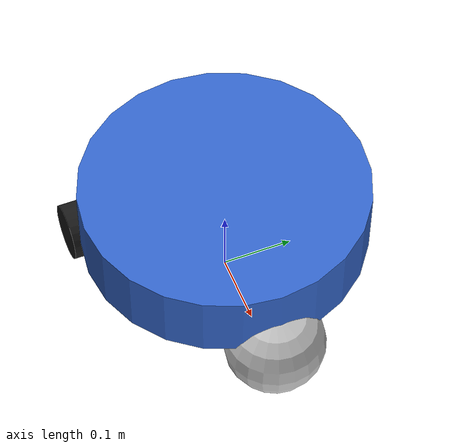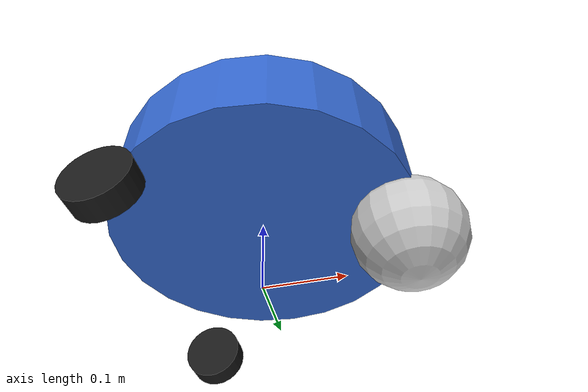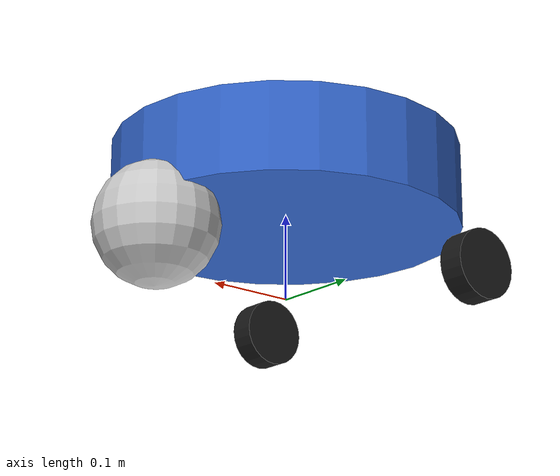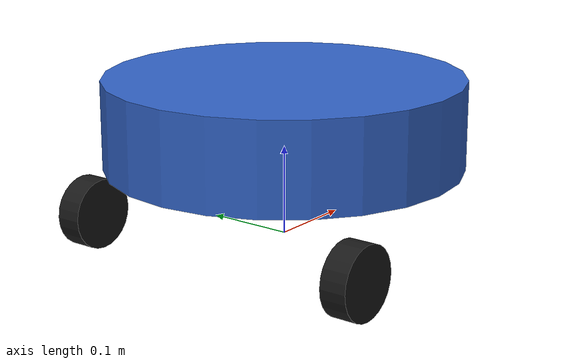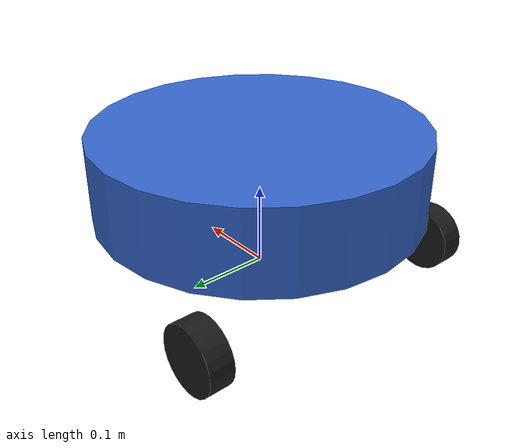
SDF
<?xml version="1.0" ?>
<sdf version="1.9">
  <model name="simple_robot">
    <pose>0 0 0.05 0 0 0</pose>

    <!-- ─── Chassis ────────────────────────────────── -->
    <link name="chassis">
      <pose>0 0 0.08 0 0 0</pose>
      <inertial>
        <mass>2.0</mass>
        <inertia>
          <ixx>0.01</ixx>
          <ixy>0</ixy>
          <ixz>0</ixz>
          <iyy>0.01</iyy>
          <iyz>0</iyz>
          <izz>0.02</izz>
        </inertia>
      </inertial>
      <collision name="collision">
        <geometry>
          <cylinder>
            <radius>0.20</radius>
            <length>0.10</length>
          </cylinder>
        </geometry>
      </collision>
      <visual name="visual">
        <geometry>
          <cylinder>
            <radius>0.20</radius>
            <length>0.10</length>
          </cylinder>
        </geometry>
        <material>
          <ambient>0.2 0.4 0.8 1</ambient>
          <diffuse>0.2 0.4 0.8 1</diffuse>
        </material>
      </visual>
      <sensor name="lidar" type="gpu_lidar">
        <pose>0 0 0.04 0 0 0</pose>
        <always_on>1</always_on>
        <update_rate>1</update_rate>
        <visualize>false</visualize>
        <topic>/scan</topic>
        <gz_frame_id>laser</gz_frame_id>
        <lidar>
          <scan>
            <horizontal>
              <samples>720</samples>
              <resolution>1</resolution>
              <min_angle>-3.14159</min_angle>
              <max_angle>3.14159</max_angle>
            </horizontal>
          </scan>
          <range>
            <min>0.1</min>
            <max>30.0</max>
            <resolution>0.01</resolution>
          </range>
          <noise>
            <type>none</type>
          </noise>
        </lidar>
      </sensor>
    </link>

    <!-- ─── Left wheel ─────────────────────────────── -->
    <link name="left_wheel">
      <pose>-0.12 0.18 -0.03 1.5708 0 0</pose>
      <inertial>
        <mass>0.2</mass>
        <inertia>
          <ixx>0.0002</ixx>
          <ixy>0</ixy>
          <ixz>0</ixz>
          <iyy>0.0002</iyy>
          <iyz>0</iyz>
          <izz>0.0003</izz>
        </inertia>
      </inertial>
      <collision name="collision">
        <geometry>
          <cylinder>
            <radius>0.04</radius>
            <length>0.03</length>
          </cylinder>
        </geometry>
      </collision>
      <visual name="visual">
        <geometry>
          <cylinder>
            <radius>0.04</radius>
            <length>0.03</length>
          </cylinder>
        </geometry>
        <material>
          <ambient>0.1 0.1 0.1 1</ambient>
          <diffuse>0.1 0.1 0.1 1</diffuse>
        </material>
      </visual>
    </link>

    <!-- ─── Right wheel ────────────────────────────── -->
    <link name="right_wheel">
      <pose>-0.12 -0.18 -0.03 1.5708 0 0</pose>
      <inertial>
        <mass>0.2</mass>
        <inertia>
          <ixx>0.0002</ixx>
          <ixy>0</ixy>
          <ixz>0</ixz>
          <iyy>0.0002</iyy>
          <iyz>0</iyz>
          <izz>0.0003</izz>
        </inertia>
      </inertial>
      <collision name="collision">
        <geometry>
          <cylinder>
            <radius>0.04</radius>
            <length>0.03</length>
          </cylinder>
        </geometry>
      </collision>
      <visual name="visual">
        <geometry>
          <cylinder>
            <radius>0.04</radius>
            <length>0.03</length>
          </cylinder>
        </geometry>
        <material>
          <ambient>0.1 0.1 0.1 1</ambient>
          <diffuse>0.1 0.1 0.1 1</diffuse>
        </material>
      </visual>
    </link>

    <!-- ─── Caster (passive ball) ──────────────────── -->
    <link name="caster">
      <pose>0.18 0 0 0 0 0</pose>
      <inertial>
        <mass>0.05</mass>
        <inertia>
          <ixx>0.0001</ixx>
          <ixy>0</ixy>
          <ixz>0</ixz>
          <iyy>0.0001</iyy>
          <iyz>0</iyz>
          <izz>0.0001</izz>
        </inertia>
      </inertial>
      <collision name="collision">
        <geometry>
          <sphere>
            <radius>0.07</radius>
          </sphere>
        </geometry>
      </collision>
      <visual name="visual">
        <geometry>
          <sphere>
            <radius>0.07</radius>
          </sphere>
        </geometry>
        <material>
          <ambient>0.8 0.8 0.8 1</ambient>
          <diffuse>0.8 0.8 0.8 1</diffuse>
        </material>
      </visual>
    </link>

    <!-- ─── Joints ─────────────────────────────────── -->

    <joint name="left_wheel_joint" type="revolute">
      <parent>chassis</parent>
      <child>left_wheel</child>
      <axis>
        <xyz>0 0 -1</xyz>
        <limit>
          <lower>-1e16</lower>
          <upper>1e16</upper>
        </limit>
      </axis>
    </joint>

    <joint name="right_wheel_joint" type="revolute">
      <parent>chassis</parent>
      <child>right_wheel</child>
      <axis>
        <xyz>0 0 -1</xyz>
        <limit>
          <lower>-1e16</lower>
          <upper>1e16</upper>
        </limit>
      </axis>
    </joint>

    <joint name="caster_joint" type="ball">
      <parent>chassis</parent>
      <child>caster</child>
    </joint>

    <!-- ─── Differential drive plugin ──────────────── -->
    <plugin
      filename="gz-sim-diff-drive-system"
      name="gz::sim::systems::DiffDrive">
      <left_joint>left_wheel_joint</left_joint>
      <right_joint>right_wheel_joint</right_joint>
      <wheel_separation>0.36</wheel_separation>
      <wheel_radius>0.04</wheel_radius>
      <odom_publish_frequency>50</odom_publish_frequency>
      <topic>/cmd_vel</topic>
      <odom_topic>/odom</odom_topic>
    </plugin>

    <!-- ─── Pose publisher plugin (true ground-truth pose) ─── -->
    <plugin
      filename="gz-sim-pose-publisher-system"
      name="gz::sim::systems::PosePublisher">
      <publish_link_pose>false</publish_link_pose>
      <publish_model_pose>true</publish_model_pose>
      <publish_nested_model_pose>false</publish_nested_model_pose>
      <update_frequency>50</update_frequency>
    </plugin>

  </model>
</sdf>
